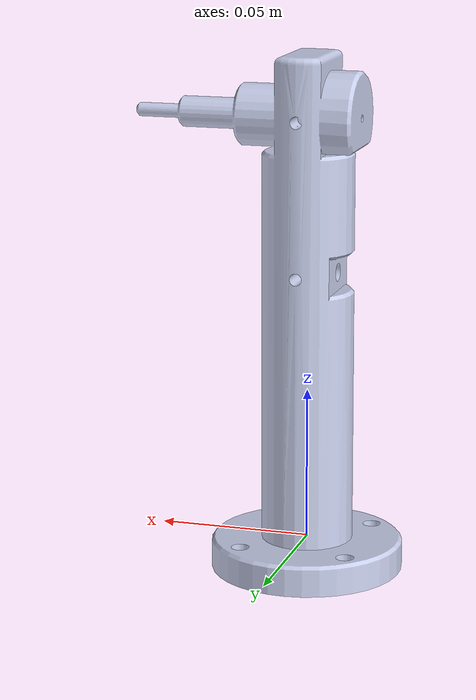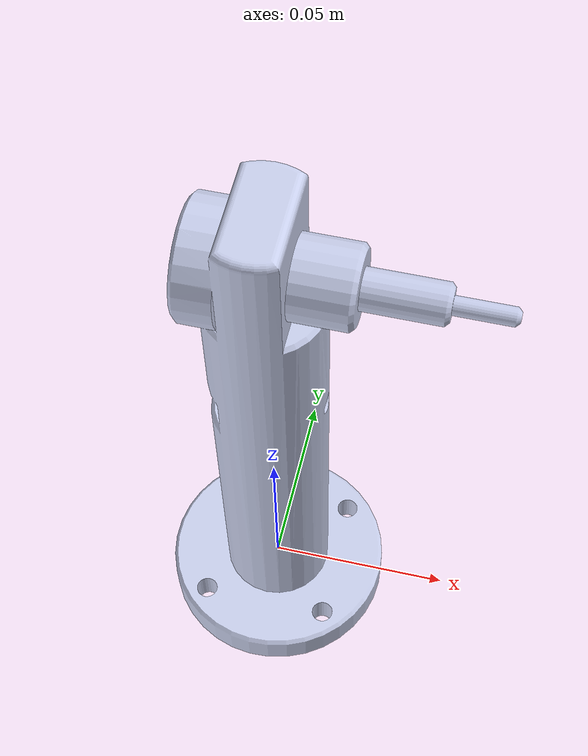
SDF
<?xml version="1.0" ?>
<sdf version="1.5">
  <model name="drill">
    <static>false</static>
    <link name="drill_link">
      <inertial>
        <pose>0 0 0.085 0 0 0</pose>
        <mass>1.0</mass>
      </inertial>
      <collision name="collision">
        <pose>0 0 0 0 0 1.57</pose>
        <geometry>
          <mesh>
            <uri>model://drill/meshes/drill.dae</uri>
          </mesh>
        </geometry>
      </collision>
      <visual name="visual">
        <pose>0 0 0 0 0 1.57</pose>
        <geometry>
          <mesh>
            <uri>model://drill/meshes/drill.dae</uri>
          </mesh>
        </geometry>
      </visual>
    </link>
  </model>
</sdf>
